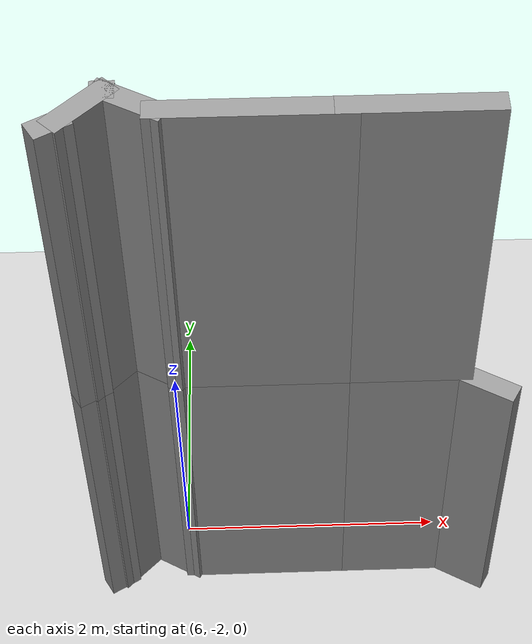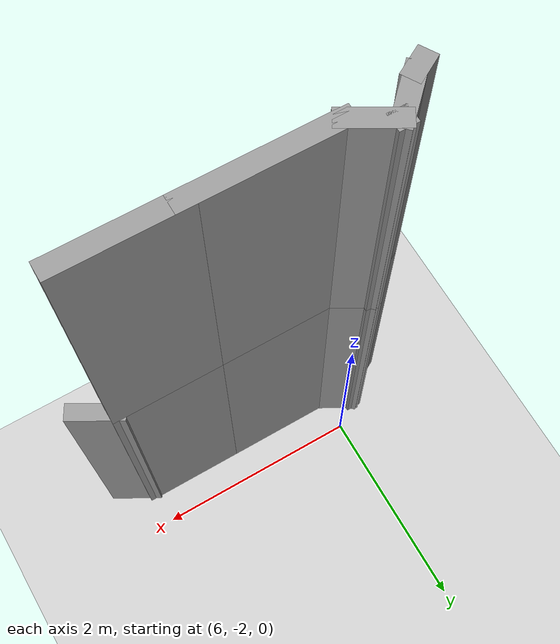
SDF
<sdf version="1.7">
 <world name="default">
  <model name="ground_plane">
   <static>1</static>
   <link name="link">
    <collision name="collision">
     <geometry><plane><normal>0 0 1</normal><size>100 100</size></plane></geometry>
     <surface>
      <contact><collide_bitmask>65535</collide_bitmask></contact>
      <friction><ode><mu>100</mu><mu2>50</mu2></ode></friction>
     </surface>
    </collision>
    <visual name="visual">
     <cast_shadows>0</cast_shadows>
     <geometry><plane><normal>0 0 1</normal><size>100 100</size></plane></geometry>
     <material>
      <script><uri>file://media/materials/scripts/gazebo.material</uri><name>Gazebo/Grey</name></script>
     </material>
    </visual>
   </link>
  </model>
  <model name="EnvDC01">
   <link name="Floor_0">
    <pose>0 0 2.5 0 -0 0</pose>
    <inertial>
     <mass>1</mass>
     <inertia><ixx>1</ixx><ixy>0</ixy><ixz>0</ixz><iyy>1</iyy><iyz>0</iyz><izz>1</izz></inertia>
    </inertial>
    <collision name="Floor_0_Collision">
     <pose>0 0 0.05 0 -0 0</pose>
     <geometry><box><size>32.7353 71.8899 0.1</size></box></geometry>
     <surface>
      <friction>
       <ode><mu>1</mu><mu2>1</mu2><fdir1>0 0 0</fdir1><slip1>0</slip1><slip2>0</slip2></ode>
       <torsional>
        <coefficient>1</coefficient>
        <patch_radius>0</patch_radius>
        <surface_radius>0</surface_radius>
        <use_patch_radius>1</use_patch_radius>
        <ode><slip>0</slip></ode>
       </torsional>
      </friction>
      <bounce><restitution_coefficient>0</restitution_coefficient><threshold>1e+06</threshold></bounce>
      <contact>
       <collide_without_contact>0</collide_without_contact>
       <collide_without_contact_bitmask>1</collide_without_contact_bitmask>
       <collide_bitmask>1</collide_bitmask>
       <ode>
        <soft_cfm>0</soft_cfm>
        <soft_erp>0.2</soft_erp>
        <kp>1e+13</kp>
        <kd>1</kd>
        <max_vel>0.01</max_vel>
        <min_depth>0</min_depth>
       </ode>
       <bullet>
        <split_impulse>1</split_impulse>
        <split_impulse_penetration_threshold>-0.01</split_impulse_penetration_threshold>
        <soft_cfm>0</soft_cfm>
        <soft_erp>0.2</soft_erp>
        <kp>1e+13</kp>
        <kd>1</kd>
       </bullet>
      </contact>
     </surface>
    </collision>
   </link>
   <link name="Wall_153">
    <pose>1.6122 3.79388 0 0 -0 2.61799</pose>
    <visual name="Wall_153_Visual">
     <pose>0 0 1.25 0 -0 0</pose>
     <geometry><box><size>0.5 0.15 2.5</size></box></geometry>
     <material>
      <script><uri>file://media/materials/scripts/gazebo.material</uri><name>Gazebo/Grey</name></script>
      <ambient>1 1 1 1</ambient>
      <shader type="pixel"/>
     </material>
     <meta><layer>0</layer></meta>
    </visual>
    <collision name="Wall_153_Collision">
     <pose>0 0 1.25 0 -0 0</pose>
     <geometry><box><size>0.5 0.15 2.5</size></box></geometry>
     <surface>
      <friction>
       <ode><mu>1</mu><mu2>1</mu2><fdir1>0 0 0</fdir1><slip1>0</slip1><slip2>0</slip2></ode>
       <torsional>
        <coefficient>1</coefficient>
        <patch_radius>0</patch_radius>
        <surface_radius>0</surface_radius>
        <use_patch_radius>1</use_patch_radius>
        <ode><slip>0</slip></ode>
       </torsional>
      </friction>
      <bounce><restitution_coefficient>0</restitution_coefficient><threshold>1e+06</threshold></bounce>
      <contact>
       <collide_without_contact>0</collide_without_contact>
       <collide_without_contact_bitmask>1</collide_without_contact_bitmask>
       <collide_bitmask>1</collide_bitmask>
       <ode>
        <soft_cfm>0</soft_cfm>
        <soft_erp>0.2</soft_erp>
        <kp>1e+13</kp>
        <kd>1</kd>
        <max_vel>0.01</max_vel>
        <min_depth>0</min_depth>
       </ode>
       <bullet>
        <split_impulse>1</split_impulse>
        <split_impulse_penetration_threshold>-0.01</split_impulse_penetration_threshold>
        <soft_cfm>0</soft_cfm>
        <soft_erp>0.2</soft_erp>
        <kp>1e+13</kp>
        <kd>1</kd>
       </bullet>
      </contact>
     </surface>
    </collision>
   </link>
   <link name="Wall_154">
    <pose>1.03564 3.88138 0 0 -0 3.14159</pose>
    <visual name="Wall_154_Visual">
     <pose>0 0 1.25 0 -0 0</pose>
     <geometry><box><size>1 0.15 2.5</size></box></geometry>
     <material>
      <script><uri>file://media/materials/scripts/gazebo.material</uri><name>Gazebo/Grey</name></script>
      <ambient>1 1 1 1</ambient>
      <shader type="pixel"/>
     </material>
     <meta><layer>0</layer></meta>
    </visual>
    <collision name="Wall_154_Collision">
     <pose>0 0 1.25 0 -0 0</pose>
     <geometry><box><size>1 0.15 2.5</size></box></geometry>
     <surface>
      <friction>
       <ode><mu>1</mu><mu2>1</mu2><fdir1>0 0 0</fdir1><slip1>0</slip1><slip2>0</slip2></ode>
       <torsional>
        <coefficient>1</coefficient>
        <patch_radius>0</patch_radius>
        <surface_radius>0</surface_radius>
        <use_patch_radius>1</use_patch_radius>
        <ode><slip>0</slip></ode>
       </torsional>
      </friction>
      <bounce><restitution_coefficient>0</restitution_coefficient><threshold>1e+06</threshold></bounce>
      <contact>
       <collide_without_contact>0</collide_without_contact>
       <collide_without_contact_bitmask>1</collide_without_contact_bitmask>
       <collide_bitmask>1</collide_bitmask>
       <ode>
        <soft_cfm>0</soft_cfm>
        <soft_erp>0.2</soft_erp>
        <kp>1e+13</kp>
        <kd>1</kd>
        <max_vel>0.01</max_vel>
        <min_depth>0</min_depth>
       </ode>
       <bullet>
        <split_impulse>1</split_impulse>
        <split_impulse_penetration_threshold>-0.01</split_impulse_penetration_threshold>
        <soft_cfm>0</soft_cfm>
        <soft_erp>0.2</soft_erp>
        <kp>1e+13</kp>
        <kd>1</kd>
       </bullet>
      </contact>
     </surface>
    </collision>
   </link>
   <link name="Wall_155">
    <pose>0.060643 3.88138 0 0 -0 3.14159</pose>
    <visual name="Wall_155_Visual">
     <pose>0 0 1.25 0 -0 0</pose>
     <geometry><box><size>1.25 0.15 2.5</size></box></geometry>
     <material>
      <script><uri>file://media/materials/scripts/gazebo.material</uri><name>Gazebo/Grey</name></script>
      <ambient>1 1 1 1</ambient>
      <shader type="pixel"/>
     </material>
     <meta><layer>0</layer></meta>
    </visual>
    <collision name="Wall_155_Collision">
     <pose>0 0 1.25 0 -0 0</pose>
     <geometry><box><size>1.25 0.15 2.5</size></box></geometry>
     <surface>
      <friction>
       <ode><mu>1</mu><mu2>1</mu2><fdir1>0 0 0</fdir1><slip1>0</slip1><slip2>0</slip2></ode>
       <torsional>
        <coefficient>1</coefficient>
        <patch_radius>0</patch_radius>
        <surface_radius>0</surface_radius>
        <use_patch_radius>1</use_patch_radius>
        <ode><slip>0</slip></ode>
       </torsional>
      </friction>
      <bounce><restitution_coefficient>0</restitution_coefficient><threshold>1e+06</threshold></bounce>
      <contact>
       <collide_without_contact>0</collide_without_contact>
       <collide_without_contact_bitmask>1</collide_without_contact_bitmask>
       <collide_bitmask>1</collide_bitmask>
       <ode>
        <soft_cfm>0</soft_cfm>
        <soft_erp>0.2</soft_erp>
        <kp>1e+13</kp>
        <kd>1</kd>
        <max_vel>0.01</max_vel>
        <min_depth>0</min_depth>
       </ode>
       <bullet>
        <split_impulse>1</split_impulse>
        <split_impulse_penetration_threshold>-0.01</split_impulse_penetration_threshold>
        <soft_cfm>0</soft_cfm>
        <soft_erp>0.2</soft_erp>
        <kp>1e+13</kp>
        <kd>1</kd>
       </bullet>
      </contact>
     </surface>
    </collision>
   </link>
   <link name="Wall_156">
    <pose>-0.640912 3.96888 0 0 -0 2.61799</pose>
    <visual name="Wall_156_Visual">
     <pose>0 0 1.25 0 -0 0</pose>
     <geometry><box><size>0.5 0.15 2.5</size></box></geometry>
     <material>
      <script><uri>file://media/materials/scripts/gazebo.material</uri><name>Gazebo/Grey</name></script>
      <ambient>1 1 1 1</ambient>
      <shader type="pixel"/>
     </material>
     <meta><layer>0</layer></meta>
    </visual>
    <collision name="Wall_156_Collision">
     <pose>0 0 1.25 0 -0 0</pose>
     <geometry><box><size>0.5 0.15 2.5</size></box></geometry>
     <surface>
      <friction>
       <ode><mu>1</mu><mu2>1</mu2><fdir1>0 0 0</fdir1><slip1>0</slip1><slip2>0</slip2></ode>
       <torsional>
        <coefficient>1</coefficient>
        <patch_radius>0</patch_radius>
        <surface_radius>0</surface_radius>
        <use_patch_radius>1</use_patch_radius>
        <ode><slip>0</slip></ode>
       </torsional>
      </friction>
      <bounce><restitution_coefficient>0</restitution_coefficient><threshold>1e+06</threshold></bounce>
      <contact>
       <collide_without_contact>0</collide_without_contact>
       <collide_without_contact_bitmask>1</collide_without_contact_bitmask>
       <collide_bitmask>1</collide_bitmask>
       <ode>
        <soft_cfm>0</soft_cfm>
        <soft_erp>0.2</soft_erp>
        <kp>1e+13</kp>
        <kd>1</kd>
        <max_vel>0.01</max_vel>
        <min_depth>0</min_depth>
       </ode>
       <bullet>
        <split_impulse>1</split_impulse>
        <split_impulse_penetration_threshold>-0.01</split_impulse_penetration_threshold>
        <soft_cfm>0</soft_cfm>
        <soft_erp>0.2</soft_erp>
        <kp>1e+13</kp>
        <kd>1</kd>
       </bullet>
      </contact>
     </surface>
    </collision>
   </link>
   <link name="Wall_157">
    <pose>-0.792467 4.05638 0 0 -0 0</pose>
    <visual name="Wall_157_Visual">
     <pose>0 0 1.25 0 -0 0</pose>
     <geometry><box><size>0.15 0.15 2.5</size></box></geometry>
     <material>
      <script><uri>file://media/materials/scripts/gazebo.material</uri><name>Gazebo/Grey</name></script>
      <ambient>1 1 1 1</ambient>
      <shader type="pixel"/>
     </material>
     <meta><layer>0</layer></meta>
    </visual>
    <collision name="Wall_157_Collision">
     <pose>0 0 1.25 0 -0 0</pose>
     <geometry><box><size>0.15 0.15 2.5</size></box></geometry>
     <surface>
      <friction>
       <ode><mu>1</mu><mu2>1</mu2><fdir1>0 0 0</fdir1><slip1>0</slip1><slip2>0</slip2></ode>
       <torsional>
        <coefficient>1</coefficient>
        <patch_radius>0</patch_radius>
        <surface_radius>0</surface_radius>
        <use_patch_radius>1</use_patch_radius>
        <ode><slip>0</slip></ode>
       </torsional>
      </friction>
      <bounce><restitution_coefficient>0</restitution_coefficient><threshold>1e+06</threshold></bounce>
      <contact>
       <collide_without_contact>0</collide_without_contact>
       <collide_without_contact_bitmask>1</collide_without_contact_bitmask>
       <collide_bitmask>1</collide_bitmask>
       <ode>
        <soft_cfm>0</soft_cfm>
        <soft_erp>0.2</soft_erp>
        <kp>1e+13</kp>
        <kd>1</kd>
        <max_vel>0.01</max_vel>
        <min_depth>0</min_depth>
       </ode>
       <bullet>
        <split_impulse>1</split_impulse>
        <split_impulse_penetration_threshold>-0.01</split_impulse_penetration_threshold>
        <soft_cfm>0</soft_cfm>
        <soft_erp>0.2</soft_erp>
        <kp>1e+13</kp>
        <kd>1</kd>
       </bullet>
      </contact>
     </surface>
    </collision>
   </link>
   <link name="Wall_158">
    <pose>-0.91621 3.93263 0 0 0 -2.35619</pose>
    <visual name="Wall_158_Visual">
     <pose>0 0 1.25 0 -0 0</pose>
     <geometry><box><size>0.5 0.15 2.5</size></box></geometry>
     <material>
      <script><uri>file://media/materials/scripts/gazebo.material</uri><name>Gazebo/Grey</name></script>
      <ambient>1 1 1 1</ambient>
      <shader type="pixel"/>
     </material>
     <meta><layer>0</layer></meta>
    </visual>
    <collision name="Wall_158_Collision">
     <pose>0 0 1.25 0 -0 0</pose>
     <geometry><box><size>0.5 0.15 2.5</size></box></geometry>
     <surface>
      <friction>
       <ode><mu>1</mu><mu2>1</mu2><fdir1>0 0 0</fdir1><slip1>0</slip1><slip2>0</slip2></ode>
       <torsional>
        <coefficient>1</coefficient>
        <patch_radius>0</patch_radius>
        <surface_radius>0</surface_radius>
        <use_patch_radius>1</use_patch_radius>
        <ode><slip>0</slip></ode>
       </torsional>
      </friction>
      <bounce><restitution_coefficient>0</restitution_coefficient><threshold>1e+06</threshold></bounce>
      <contact>
       <collide_without_contact>0</collide_without_contact>
       <collide_without_contact_bitmask>1</collide_without_contact_bitmask>
       <collide_bitmask>1</collide_bitmask>
       <ode>
        <soft_cfm>0</soft_cfm>
        <soft_erp>0.2</soft_erp>
        <kp>1e+13</kp>
        <kd>1</kd>
        <max_vel>0.01</max_vel>
        <min_depth>0</min_depth>
       </ode>
       <bullet>
        <split_impulse>1</split_impulse>
        <split_impulse_penetration_threshold>-0.01</split_impulse_penetration_threshold>
        <soft_cfm>0</soft_cfm>
        <soft_erp>0.2</soft_erp>
        <kp>1e+13</kp>
        <kd>1</kd>
       </bullet>
      </contact>
     </surface>
    </collision>
   </link>
   <link name="Wall_159">
    <pose>-1.08326 3.78389 0 0 0 -2.61799</pose>
    <visual name="Wall_159_Visual">
     <pose>0 0 1.25 0 -0 0</pose>
     <geometry><box><size>0.25 0.15 2.5</size></box></geometry>
     <material>
      <script><uri>file://media/materials/scripts/gazebo.material</uri><name>Gazebo/Grey</name></script>
      <ambient>1 1 1 1</ambient>
      <shader type="pixel"/>
     </material>
     <meta><layer>0</layer></meta>
    </visual>
    <collision name="Wall_159_Collision">
     <pose>0 0 1.25 0 -0 0</pose>
     <geometry><box><size>0.25 0.15 2.5</size></box></geometry>
     <surface>
      <friction>
       <ode><mu>1</mu><mu2>1</mu2><fdir1>0 0 0</fdir1><slip1>0</slip1><slip2>0</slip2></ode>
       <torsional>
        <coefficient>1</coefficient>
        <patch_radius>0</patch_radius>
        <surface_radius>0</surface_radius>
        <use_patch_radius>1</use_patch_radius>
        <ode><slip>0</slip></ode>
       </torsional>
      </friction>
      <bounce><restitution_coefficient>0</restitution_coefficient><threshold>1e+06</threshold></bounce>
      <contact>
       <collide_without_contact>0</collide_without_contact>
       <collide_without_contact_bitmask>1</collide_without_contact_bitmask>
       <collide_bitmask>1</collide_bitmask>
       <ode>
        <soft_cfm>0</soft_cfm>
        <soft_erp>0.2</soft_erp>
        <kp>1e+13</kp>
        <kd>1</kd>
        <max_vel>0.01</max_vel>
        <min_depth>0</min_depth>
       </ode>
       <bullet>
        <split_impulse>1</split_impulse>
        <split_impulse_penetration_threshold>-0.01</split_impulse_penetration_threshold>
        <soft_cfm>0</soft_cfm>
        <soft_erp>0.2</soft_erp>
        <kp>1e+13</kp>
        <kd>1</kd>
       </bullet>
      </contact>
     </surface>
    </collision>
   </link>
   <link name="Wall_343">
    <pose>1.03564 3.88138 2.5 0 -0 3.14159</pose>
    <visual name="Wall_343_Visual">
     <pose>0 0 1.25 0 -0 0</pose>
     <geometry><box><size>1 0.15 2.5</size></box></geometry>
     <material>
      <script><uri>file://media/materials/scripts/gazebo.material</uri><name>Gazebo/Grey</name></script>
      <ambient>1 1 1 1</ambient>
      <shader type="pixel"/>
     </material>
     <meta><layer>1</layer></meta>
    </visual>
    <collision name="Wall_343_Collision">
     <pose>0 0 1.25 0 -0 0</pose>
     <geometry><box><size>1 0.15 2.5</size></box></geometry>
     <surface>
      <friction>
       <ode><mu>1</mu><mu2>1</mu2><fdir1>0 0 0</fdir1><slip1>0</slip1><slip2>0</slip2></ode>
       <torsional>
        <coefficient>1</coefficient>
        <patch_radius>0</patch_radius>
        <surface_radius>0</surface_radius>
        <use_patch_radius>1</use_patch_radius>
        <ode><slip>0</slip></ode>
       </torsional>
      </friction>
      <bounce><restitution_coefficient>0</restitution_coefficient><threshold>1e+06</threshold></bounce>
      <contact>
       <collide_without_contact>0</collide_without_contact>
       <collide_without_contact_bitmask>1</collide_without_contact_bitmask>
       <collide_bitmask>1</collide_bitmask>
       <ode>
        <soft_cfm>0</soft_cfm>
        <soft_erp>0.2</soft_erp>
        <kp>1e+13</kp>
        <kd>1</kd>
        <max_vel>0.01</max_vel>
        <min_depth>0</min_depth>
       </ode>
       <bullet>
        <split_impulse>1</split_impulse>
        <split_impulse_penetration_threshold>-0.01</split_impulse_penetration_threshold>
        <soft_cfm>0</soft_cfm>
        <soft_erp>0.2</soft_erp>
        <kp>1e+13</kp>
        <kd>1</kd>
       </bullet>
      </contact>
     </surface>
    </collision>
   </link>
   <link name="Wall_344">
    <pose>0.060642 3.88138 2.5 0 -0 3.14159</pose>
    <visual name="Wall_344_Visual">
     <pose>0 0 1.25 0 -0 0</pose>
     <geometry><box><size>1.25 0.15 2.5</size></box></geometry>
     <material>
      <script><uri>file://media/materials/scripts/gazebo.material</uri><name>Gazebo/Grey</name></script>
      <ambient>1 1 1 1</ambient>
      <shader type="pixel"/>
     </material>
     <meta><layer>1</layer></meta>
    </visual>
    <collision name="Wall_344_Collision">
     <pose>0 0 1.25 0 -0 0</pose>
     <geometry><box><size>1.25 0.15 2.5</size></box></geometry>
     <surface>
      <friction>
       <ode><mu>1</mu><mu2>1</mu2><fdir1>0 0 0</fdir1><slip1>0</slip1><slip2>0</slip2></ode>
       <torsional>
        <coefficient>1</coefficient>
        <patch_radius>0</patch_radius>
        <surface_radius>0</surface_radius>
        <use_patch_radius>1</use_patch_radius>
        <ode><slip>0</slip></ode>
       </torsional>
      </friction>
      <bounce><restitution_coefficient>0</restitution_coefficient><threshold>1e+06</threshold></bounce>
      <contact>
       <collide_without_contact>0</collide_without_contact>
       <collide_without_contact_bitmask>1</collide_without_contact_bitmask>
       <collide_bitmask>1</collide_bitmask>
       <ode>
        <soft_cfm>0</soft_cfm>
        <soft_erp>0.2</soft_erp>
        <kp>1e+13</kp>
        <kd>1</kd>
        <max_vel>0.01</max_vel>
        <min_depth>0</min_depth>
       </ode>
       <bullet>
        <split_impulse>1</split_impulse>
        <split_impulse_penetration_threshold>-0.01</split_impulse_penetration_threshold>
        <soft_cfm>0</soft_cfm>
        <soft_erp>0.2</soft_erp>
        <kp>1e+13</kp>
        <kd>1</kd>
       </bullet>
      </contact>
     </surface>
    </collision>
   </link>
   <link name="Wall_345">
    <pose>-0.640912 3.96888 2.5 0 -0 2.61799</pose>
    <visual name="Wall_345_Visual">
     <pose>0 0 1.25 0 -0 0</pose>
     <geometry><box><size>0.5 0.15 2.5</size></box></geometry>
     <material>
      <script><uri>file://media/materials/scripts/gazebo.material</uri><name>Gazebo/Grey</name></script>
      <ambient>1 1 1 1</ambient>
      <shader type="pixel"/>
     </material>
     <meta><layer>1</layer></meta>
    </visual>
    <collision name="Wall_345_Collision">
     <pose>0 0 1.25 0 -0 0</pose>
     <geometry><box><size>0.5 0.15 2.5</size></box></geometry>
     <surface>
      <friction>
       <ode><mu>1</mu><mu2>1</mu2><fdir1>0 0 0</fdir1><slip1>0</slip1><slip2>0</slip2></ode>
       <torsional>
        <coefficient>1</coefficient>
        <patch_radius>0</patch_radius>
        <surface_radius>0</surface_radius>
        <use_patch_radius>1</use_patch_radius>
        <ode><slip>0</slip></ode>
       </torsional>
      </friction>
      <bounce><restitution_coefficient>0</restitution_coefficient><threshold>1e+06</threshold></bounce>
      <contact>
       <collide_without_contact>0</collide_without_contact>
       <collide_without_contact_bitmask>1</collide_without_contact_bitmask>
       <collide_bitmask>1</collide_bitmask>
       <ode>
        <soft_cfm>0</soft_cfm>
        <soft_erp>0.2</soft_erp>
        <kp>1e+13</kp>
        <kd>1</kd>
        <max_vel>0.01</max_vel>
        <min_depth>0</min_depth>
       </ode>
       <bullet>
        <split_impulse>1</split_impulse>
        <split_impulse_penetration_threshold>-0.01</split_impulse_penetration_threshold>
        <soft_cfm>0</soft_cfm>
        <soft_erp>0.2</soft_erp>
        <kp>1e+13</kp>
        <kd>1</kd>
       </bullet>
      </contact>
     </surface>
    </collision>
   </link>
   <link name="Wall_346">
    <pose>-0.792467 4.05638 2.5 0 -0 0</pose>
    <visual name="Wall_346_Visual">
     <pose>0 0 1.25 0 -0 0</pose>
     <geometry><box><size>0.15 0.15 2.5</size></box></geometry>
     <material>
      <script><uri>file://media/materials/scripts/gazebo.material</uri><name>Gazebo/Grey</name></script>
      <ambient>1 1 1 1</ambient>
      <shader type="pixel"/>
     </material>
     <meta><layer>1</layer></meta>
    </visual>
    <collision name="Wall_346_Collision">
     <pose>0 0 1.25 0 -0 0</pose>
     <geometry><box><size>0.15 0.15 2.5</size></box></geometry>
     <surface>
      <friction>
       <ode><mu>1</mu><mu2>1</mu2><fdir1>0 0 0</fdir1><slip1>0</slip1><slip2>0</slip2></ode>
       <torsional>
        <coefficient>1</coefficient>
        <patch_radius>0</patch_radius>
        <surface_radius>0</surface_radius>
        <use_patch_radius>1</use_patch_radius>
        <ode><slip>0</slip></ode>
       </torsional>
      </friction>
      <bounce><restitution_coefficient>0</restitution_coefficient><threshold>1e+06</threshold></bounce>
      <contact>
       <collide_without_contact>0</collide_without_contact>
       <collide_without_contact_bitmask>1</collide_without_contact_bitmask>
       <collide_bitmask>1</collide_bitmask>
       <ode>
        <soft_cfm>0</soft_cfm>
        <soft_erp>0.2</soft_erp>
        <kp>1e+13</kp>
        <kd>1</kd>
        <max_vel>0.01</max_vel>
        <min_depth>0</min_depth>
       </ode>
       <bullet>
        <split_impulse>1</split_impulse>
        <split_impulse_penetration_threshold>-0.01</split_impulse_penetration_threshold>
        <soft_cfm>0</soft_cfm>
        <soft_erp>0.2</soft_erp>
        <kp>1e+13</kp>
        <kd>1</kd>
       </bullet>
      </contact>
     </surface>
    </collision>
   </link>
   <link name="Wall_347">
    <pose>-0.91621 3.93263 2.5 0 0 -2.35619</pose>
    <visual name="Wall_347_Visual">
     <pose>0 0 1.25 0 -0 0</pose>
     <geometry><box><size>0.5 0.15 2.5</size></box></geometry>
     <material>
      <script><uri>file://media/materials/scripts/gazebo.material</uri><name>Gazebo/Grey</name></script>
      <ambient>1 1 1 1</ambient>
      <shader type="pixel"/>
     </material>
     <meta><layer>1</layer></meta>
    </visual>
    <collision name="Wall_347_Collision">
     <pose>0 0 1.25 0 -0 0</pose>
     <geometry><box><size>0.5 0.15 2.5</size></box></geometry>
     <surface>
      <friction>
       <ode><mu>1</mu><mu2>1</mu2><fdir1>0 0 0</fdir1><slip1>0</slip1><slip2>0</slip2></ode>
       <torsional>
        <coefficient>1</coefficient>
        <patch_radius>0</patch_radius>
        <surface_radius>0</surface_radius>
        <use_patch_radius>1</use_patch_radius>
        <ode><slip>0</slip></ode>
       </torsional>
      </friction>
      <bounce><restitution_coefficient>0</restitution_coefficient><threshold>1e+06</threshold></bounce>
      <contact>
       <collide_without_contact>0</collide_without_contact>
       <collide_without_contact_bitmask>1</collide_without_contact_bitmask>
       <collide_bitmask>1</collide_bitmask>
       <ode>
        <soft_cfm>0</soft_cfm>
        <soft_erp>0.2</soft_erp>
        <kp>1e+13</kp>
        <kd>1</kd>
        <max_vel>0.01</max_vel>
        <min_depth>0</min_depth>
       </ode>
       <bullet>
        <split_impulse>1</split_impulse>
        <split_impulse_penetration_threshold>-0.01</split_impulse_penetration_threshold>
        <soft_cfm>0</soft_cfm>
        <soft_erp>0.2</soft_erp>
        <kp>1e+13</kp>
        <kd>1</kd>
       </bullet>
      </contact>
     </surface>
    </collision>
   </link>
   <link name="Wall_348">
    <pose>-1.08326 3.78389 2.5 0 0 -2.61799</pose>
    <visual name="Wall_348_Visual">
     <pose>0 0 1.25 0 -0 0</pose>
     <geometry><box><size>0.25 0.15 2.5</size></box></geometry>
     <material>
      <script><uri>file://media/materials/scripts/gazebo.material</uri><name>Gazebo/Grey</name></script>
      <ambient>1 1 1 1</ambient>
      <shader type="pixel"/>
     </material>
     <meta><layer>1</layer></meta>
    </visual>
    <collision name="Wall_348_Collision">
     <pose>0 0 1.25 0 -0 0</pose>
     <geometry><box><size>0.25 0.15 2.5</size></box></geometry>
     <surface>
      <friction>
       <ode><mu>1</mu><mu2>1</mu2><fdir1>0 0 0</fdir1><slip1>0</slip1><slip2>0</slip2></ode>
       <torsional>
        <coefficient>1</coefficient>
        <patch_radius>0</patch_radius>
        <surface_radius>0</surface_radius>
        <use_patch_radius>1</use_patch_radius>
        <ode><slip>0</slip></ode>
       </torsional>
      </friction>
      <bounce><restitution_coefficient>0</restitution_coefficient><threshold>1e+06</threshold></bounce>
      <contact>
       <collide_without_contact>0</collide_without_contact>
       <collide_without_contact_bitmask>1</collide_without_contact_bitmask>
       <collide_bitmask>1</collide_bitmask>
       <ode>
        <soft_cfm>0</soft_cfm>
        <soft_erp>0.2</soft_erp>
        <kp>1e+13</kp>
        <kd>1</kd>
        <max_vel>0.01</max_vel>
        <min_depth>0</min_depth>
       </ode>
       <bullet>
        <split_impulse>1</split_impulse>
        <split_impulse_penetration_threshold>-0.01</split_impulse_penetration_threshold>
        <soft_cfm>0</soft_cfm>
        <soft_erp>0.2</soft_erp>
        <kp>1e+13</kp>
        <kd>1</kd>
       </bullet>
      </contact>
     </surface>
    </collision>
   </link>
   <static>1</static>
   <pose>6.55365 -6.2466 0 0 -0 0</pose>
  </model>
 </world>
</sdf>
